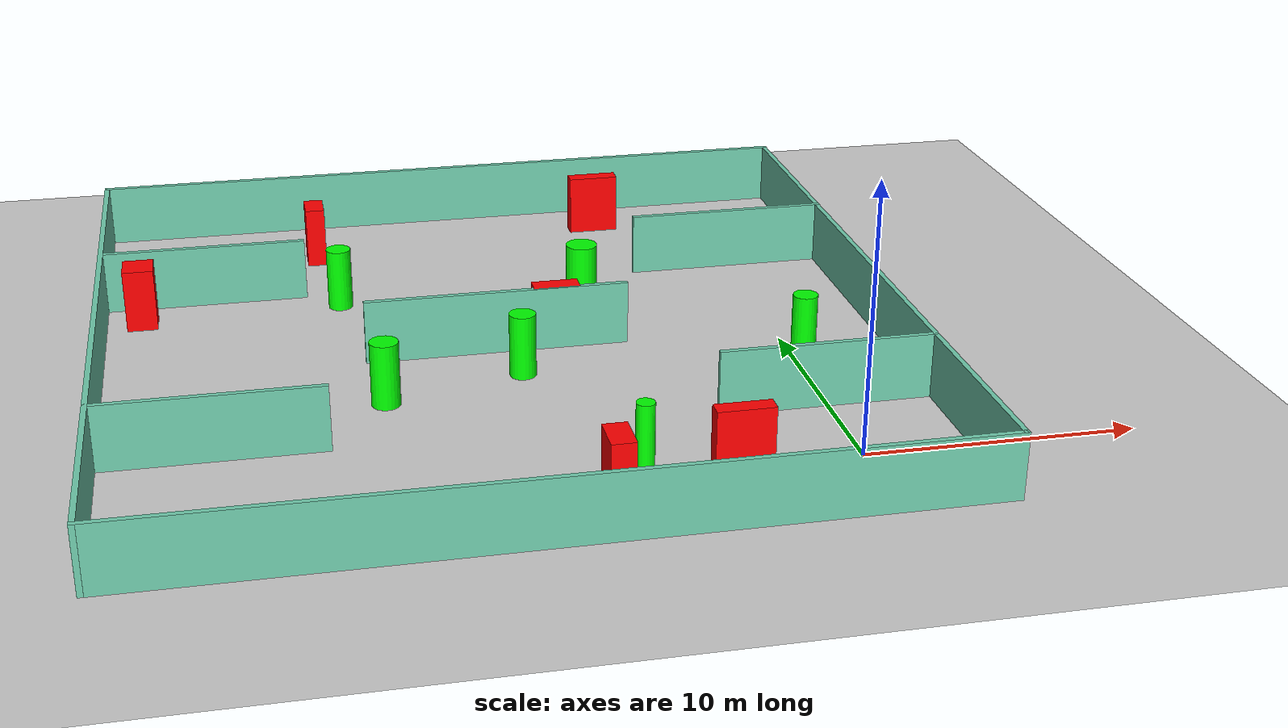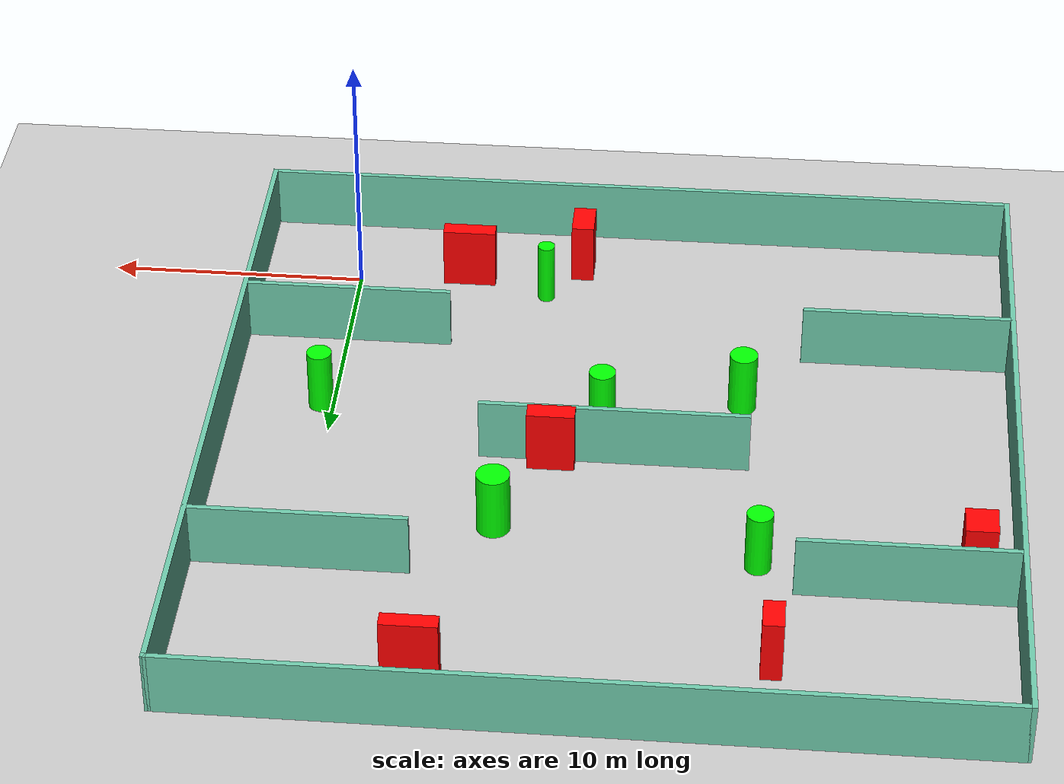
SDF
<sdf version="1.7">
 <world name="default">
  <light name="sun" type="directional">
   <pose>0 0 10 0 -0 0</pose>
   <diffuse>0.8 0.8 0.8 1</diffuse>
   <specular>0.2 0.2 0.2 1</specular>
   <attenuation>
    <range>1000</range>
    <constant>0.9</constant>
    <linear>0.01</linear>
    <quadratic>0.001</quadratic>
   </attenuation>
   <direction>-0.5 0.1 -0.9</direction>
   <spot><inner_angle>0</inner_angle><outer_angle>0</outer_angle><falloff>0</falloff></spot>
  </light>
  <model name="ground_plane">
   <static>1</static>
   <link name="link">
    <collision name="collision">
     <geometry><plane><normal>0 0 1</normal><size>100 100</size></plane></geometry>
     <surface>
      <contact><collide_bitmask>65535</collide_bitmask></contact>
      <friction><ode><mu>100</mu><mu2>50</mu2></ode></friction>
     </surface>
    </collision>
    <visual name="visual">
     <cast_shadows>0</cast_shadows>
     <geometry><plane><normal>0 0 1</normal><size>100 100</size></plane></geometry>
     <material>
      <script><uri>file://media/materials/scripts/gazebo.material</uri><name>Gazebo/Grey</name></script>
     </material>
    </visual>
   </link>
  </model>
  <gravity>0 0 -9.8</gravity>
  <magnetic_field>6e-06 2.3e-05 -4.2e-05</magnetic_field>
  <atmosphere type="adiabatic"/>
  <physics type="ode">
   <max_step_size>0.001</max_step_size>
   <real_time_factor>1</real_time_factor>
   <real_time_update_rate>1000</real_time_update_rate>
  </physics>
  <scene><ambient>0.4 0.4 0.4 1</ambient><background>0.7 0.7 0.7 1</background><shadows>1</shadows></scene>
  <spherical_coordinates>
   <surface_model>EARTH_WGS84</surface_model>
   <latitude_deg>0</latitude_deg>
   <longitude_deg>0</longitude_deg>
   <elevation>0</elevation>
   <heading_deg>0</heading_deg>
  </spherical_coordinates>
  <model name="my_base_walls">
   <link name="Wall_10">
    <collision name="Wall_10_Collision">
     <geometry><box><size>8.2 0.2 2.5</size></box></geometry>
     <pose>0 0 1.25 0 -0 0</pose>
    </collision>
    <visual name="Wall_10_Visual">
     <pose>0 0 1.25 0 -0 0</pose>
     <geometry><box><size>8.2 0.2 2.5</size></box></geometry>
     <material>
      <script><uri>file://media/materials/scripts/gazebo.material</uri><name>Gazebo/Grey</name></script>
      <ambient>0.435294 0.796078 0.67451 1</ambient>
     </material>
     <meta><layer>0</layer></meta>
    </visual>
    <pose>-11 -7 0 0 -0 0</pose>
   </link>
   <link name="Wall_12">
    <collision name="Wall_12_Collision">
     <geometry><box><size>8.2 0.2 2.5</size></box></geometry>
     <pose>0 0 1.25 0 -0 0</pose>
    </collision>
    <visual name="Wall_12_Visual">
     <pose>0 0 1.25 0 -0 0</pose>
     <geometry><box><size>8.2 0.2 2.5</size></box></geometry>
     <material>
      <script><uri>file://media/materials/scripts/gazebo.material</uri><name>Gazebo/Grey</name></script>
      <ambient>0.435294 0.796078 0.67451 1</ambient>
     </material>
     <meta><layer>0</layer></meta>
    </visual>
    <pose>-11 7 0 0 -0 0</pose>
   </link>
   <link name="Wall_14">
    <collision name="Wall_14_Collision">
     <geometry><box><size>8.2 0.2 2.5</size></box></geometry>
     <pose>0 0 1.25 0 -0 0</pose>
    </collision>
    <visual name="Wall_14_Visual">
     <pose>0 0 1.25 0 -0 0</pose>
     <geometry><box><size>8.2 0.2 2.5</size></box></geometry>
     <material>
      <script><uri>file://media/materials/scripts/gazebo.material</uri><name>Gazebo/Grey</name></script>
      <ambient>0.435294 0.796078 0.67451 1</ambient>
     </material>
     <meta><layer>0</layer></meta>
    </visual>
    <pose>11 7 0 0 -0 3.14159</pose>
   </link>
   <link name="Wall_16">
    <collision name="Wall_16_Collision">
     <geometry><box><size>10.2 0.2 2.5</size></box></geometry>
     <pose>0 0 1.25 0 -0 0</pose>
    </collision>
    <visual name="Wall_16_Visual">
     <pose>0 0 1.25 0 -0 0</pose>
     <geometry><box><size>10.2 0.2 2.5</size></box></geometry>
     <material>
      <script><uri>file://media/materials/scripts/gazebo.material</uri><name>Gazebo/Grey</name></script>
      <ambient>0.435294 0.796078 0.67451 1</ambient>
     </material>
     <meta><layer>0</layer></meta>
    </visual>
    <pose>0 0 0 0 -0 3.14159</pose>
   </link>
   <link name="Wall_2">
    <collision name="Wall_2_Collision">
     <geometry><box><size>30.2 0.2 2.5</size></box></geometry>
     <pose>0 0 1.25 0 -0 0</pose>
    </collision>
    <visual name="Wall_2_Visual">
     <pose>0 0 1.25 0 -0 0</pose>
     <geometry><box><size>30.2 0.2 2.5</size></box></geometry>
     <material>
      <script><uri>file://media/materials/scripts/gazebo.material</uri><name>Gazebo/Grey</name></script>
      <ambient>0.435294 0.796078 0.67451 1</ambient>
     </material>
     <meta><layer>0</layer></meta>
    </visual>
    <pose>0 -15 0 0 -0 3.14159</pose>
   </link>
   <link name="Wall_3">
    <collision name="Wall_3_Collision">
     <geometry><box><size>30.2 0.2 2.5</size></box></geometry>
     <pose>0 0 1.25 0 -0 0</pose>
    </collision>
    <visual name="Wall_3_Visual">
     <pose>0 0 1.25 0 -0 0</pose>
     <geometry><box><size>30.2 0.2 2.5</size></box></geometry>
     <material>
      <script><uri>file://media/materials/scripts/gazebo.material</uri><name>Gazebo/Grey</name></script>
      <ambient>0.435294 0.796078 0.67451 1</ambient>
     </material>
     <meta><layer>0</layer></meta>
    </visual>
    <pose>-15 0 0 0 -0 1.5708</pose>
   </link>
   <link name="Wall_4">
    <collision name="Wall_4_Collision">
     <geometry><box><size>30.2 0.2 2.5</size></box></geometry>
     <pose>0 0 1.25 0 -0 0</pose>
    </collision>
    <visual name="Wall_4_Visual">
     <pose>0 0 1.25 0 -0 0</pose>
     <geometry><box><size>30.2 0.2 2.5</size></box></geometry>
     <material>
      <script><uri>file://media/materials/scripts/gazebo.material</uri><name>Gazebo/Grey</name></script>
      <ambient>0.435294 0.796078 0.67451 1</ambient>
     </material>
     <meta><layer>0</layer></meta>
    </visual>
    <pose>0 15 0 0 -0 0</pose>
   </link>
   <link name="Wall_6">
    <collision name="Wall_6_Collision">
     <geometry><box><size>30.2 0.2 2.5</size></box></geometry>
     <pose>0 0 1.25 0 -0 0</pose>
    </collision>
    <visual name="Wall_6_Visual">
     <pose>0 0 1.25 0 -0 0</pose>
     <geometry><box><size>30.2 0.2 2.5</size></box></geometry>
     <material>
      <script><uri>file://media/materials/scripts/gazebo.material</uri><name>Gazebo/Grey</name></script>
      <ambient>0.435294 0.796078 0.67451 1</ambient>
     </material>
     <meta><layer>0</layer></meta>
    </visual>
    <pose>15 0 0 0 -0 1.5708</pose>
   </link>
   <link name="Wall_8">
    <collision name="Wall_8_Collision">
     <geometry><box><size>8.2 0.2 2.5</size></box></geometry>
     <pose>0 0 1.25 0 -0 0</pose>
    </collision>
    <visual name="Wall_8_Visual">
     <pose>0 0 1.25 0 -0 0</pose>
     <geometry><box><size>8.2 0.2 2.5</size></box></geometry>
     <material>
      <script><uri>file://media/materials/scripts/gazebo.material</uri><name>Gazebo/Grey</name></script>
      <ambient>0.435294 0.796078 0.67451 1</ambient>
     </material>
     <meta><layer>0</layer></meta>
    </visual>
    <pose>11 -7 0 0 -0 3.14159</pose>
   </link>
   <static>1</static>
   <pose>-11 11 0 0 -0 0</pose>
  </model>
  <model name="cylinder1">
   <static>1</static>
   <link name="link">
    <inertial>
     <mass>1</mass>
     <inertia><ixx>0.5</ixx><ixy>0</ixy><ixz>0</ixz><iyy>0.5</iyy><iyz>0</iyz><izz>1</izz></inertia>
    </inertial>
    <collision name="collision">
     <geometry><cylinder><radius>0.5076579068961748</radius><length>2.5</length></cylinder></geometry>
    </collision>
    <visual name="visual">
     <geometry><cylinder><radius>0.5076579068961748</radius><length>2.5</length></cylinder></geometry>
     <material>
      <ambient>0 1 0 1</ambient>
      <diffuse>0 1 0 1</diffuse>
      <specular>0.1 0.1 0.1 1</specular>
      <emissive>0 0 0 0</emissive>
     </material>
    </visual>
   </link>
   <pose>-10.404521040081463 8.728788992707244 1.25 0 0 0</pose>
  </model>
  <model name="cylinder2">
   <static>1</static>
   <link name="link">
    <inertial>
     <mass>1</mass>
     <inertia><ixx>0.5</ixx><ixy>0</ixy><ixz>0</ixz><iyy>0.5</iyy><iyz>0</iyz><izz>1</izz></inertia>
    </inertial>
    <collision name="collision">
     <geometry><cylinder><radius>0.47893423547726904</radius><length>2.5</length></cylinder></geometry>
    </collision>
    <visual name="visual">
     <geometry><cylinder><radius>0.47893423547726904</radius><length>2.5</length></cylinder></geometry>
     <material>
      <ambient>0 1 0 1</ambient>
      <diffuse>0 1 0 1</diffuse>
      <specular>0.1 0.1 0.1 1</specular>
      <emissive>0 0 0 0</emissive>
     </material>
    </visual>
   </link>
   <pose>0.4669063109963538 8.401607090082752 1.25 0 0 0</pose>
  </model>
  <model name="cylinder3">
   <static>1</static>
   <link name="link">
    <inertial>
     <mass>1</mass>
     <inertia><ixx>0.5</ixx><ixy>0</ixy><ixz>0</ixz><iyy>0.5</iyy><iyz>0</iyz><izz>1</izz></inertia>
    </inertial>
    <collision name="collision">
     <geometry><cylinder><radius>0.5379399599937049</radius><length>2.5</length></cylinder></geometry>
    </collision>
    <visual name="visual">
     <geometry><cylinder><radius>0.5379399599937049</radius><length>2.5</length></cylinder></geometry>
     <material>
      <ambient>0 1 0 1</ambient>
      <diffuse>0 1 0 1</diffuse>
      <specular>0.1 0.1 0.1 1</specular>
      <emissive>0 0 0 0</emissive>
     </material>
    </visual>
   </link>
   <pose>-15.706776525460837 7.2030785739266445 1.25 0 0 0</pose>
  </model>
  <model name="cylinder4">
   <static>1</static>
   <link name="link">
    <inertial>
     <mass>1</mass>
     <inertia><ixx>0.5</ixx><ixy>0</ixy><ixz>0</ixz><iyy>0.5</iyy><iyz>0</iyz><izz>1</izz></inertia>
    </inertial>
    <collision name="collision">
     <geometry><cylinder><radius>0.6294511665797756</radius><length>2.5</length></cylinder></geometry>
    </collision>
    <visual name="visual">
     <geometry><cylinder><radius>0.6294511665797756</radius><length>2.5</length></cylinder></geometry>
     <material>
      <ambient>0 1 0 1</ambient>
      <diffuse>0 1 0 1</diffuse>
      <specular>0.1 0.1 0.1 1</specular>
      <emissive>0 0 0 0</emissive>
     </material>
    </visual>
   </link>
   <pose>-6.8643484094104785 15.256737143739858 1.25 0 0 0</pose>
  </model>
  <model name="cylinder5">
   <static>1</static>
   <link name="link">
    <inertial>
     <mass>1</mass>
     <inertia><ixx>0.5</ixx><ixy>0</ixy><ixz>0</ixz><iyy>0.5</iyy><iyz>0</iyz><izz>1</izz></inertia>
    </inertial>
    <collision name="collision">
     <geometry><cylinder><radius>0.33675269054771406</radius><length>2.5</length></cylinder></geometry>
    </collision>
    <visual name="visual">
     <geometry><cylinder><radius>0.33675269054771406</radius><length>2.5</length></cylinder></geometry>
     <material>
      <ambient>0 1 0 1</ambient>
      <diffuse>0 1 0 1</diffuse>
      <specular>0.1 0.1 0.1 1</specular>
      <emissive>0 0 0 0</emissive>
     </material>
    </visual>
   </link>
   <pose>-7.599997250577182 0.5399127896762828 1.25 0 0 0</pose>
  </model>
  <model name="cylinder6">
   <static>1</static>
   <link name="link">
    <inertial>
     <mass>1</mass>
     <inertia><ixx>0.5</ixx><ixy>0</ixy><ixz>0</ixz><iyy>0.5</iyy><iyz>0</iyz><izz>1</izz></inertia>
    </inertial>
    <collision name="collision">
     <geometry><cylinder><radius>0.4889798881829362</radius><length>2.5</length></cylinder></geometry>
    </collision>
    <visual name="visual">
     <geometry><cylinder><radius>0.4889798881829362</radius><length>2.5</length></cylinder></geometry>
     <material>
      <ambient>0 1 0 1</ambient>
      <diffuse>0 1 0 1</diffuse>
      <specular>0.1 0.1 0.1 1</specular>
      <emissive>0 0 0 0</emissive>
     </material>
    </visual>
   </link>
   <pose>-16.608614359442367 16.687824479805396 1.25 0 0 0</pose>
  </model>
  <model name="box1">
   <static>1</static>
   <link name="link">
    <inertial>
     <mass>1</mass>
     <inertia><ixx>0.083</ixx><ixy>0</ixy><ixz>0</ixz><iyy>0.083</iyy><iyz>0</iyz><izz>0.083</izz></inertia>
    </inertial>
    <collision name="collision">
     <geometry><box><size>2.0874400903740633 0.6346261988567907 2.5</size></box></geometry>
    </collision>
    <visual name="visual">
     <geometry><box><size>2.0874400903740633 0.6346261988567907 2.5</size></box></geometry>
     <material>
      <ambient>1 0 0 1</ambient>
      <diffuse>1 0 0 1</diffuse>
      <specular>0.1 0.1 0.1 1</specular>
      <emissive>0 0 0 0</emissive>
     </material>
    </visual>
    <sensor name="my_contact" type="contact">
     <contact><collision>box_collision</collision><topic>__default_topic__</topic></contact>
    </sensor>
   </link>
   <pose>-4.422850896759149 -0.39294880701763857 1.25 0 0 0</pose>
  </model>
  <model name="box2">
   <static>1</static>
   <link name="link">
    <inertial>
     <mass>1</mass>
     <inertia><ixx>0.083</ixx><ixy>0</ixy><ixz>0</ixz><iyy>0.083</iyy><iyz>0</iyz><izz>0.083</izz></inertia>
    </inertial>
    <collision name="collision">
     <geometry><box><size>0.782509683025865 1.3348603657862508 2.5</size></box></geometry>
    </collision>
    <visual name="visual">
     <geometry><box><size>0.782509683025865 1.3348603657862508 2.5</size></box></geometry>
     <material>
      <ambient>1 0 0 1</ambient>
      <diffuse>1 0 0 1</diffuse>
      <specular>0.1 0.1 0.1 1</specular>
      <emissive>0 0 0 0</emissive>
     </material>
    </visual>
    <sensor name="my_contact" type="contact">
     <contact><collision>box_collision</collision><topic>__default_topic__</topic></contact>
    </sensor>
   </link>
   <pose>-17.23908709483142 22.04582611277741 1.25 0 0 0</pose>
  </model>
  <model name="box3">
   <static>1</static>
   <link name="link">
    <inertial>
     <mass>1</mass>
     <inertia><ixx>0.083</ixx><ixy>0</ixy><ixz>0</ixz><iyy>0.083</iyy><iyz>0</iyz><izz>0.083</izz></inertia>
    </inertial>
    <collision name="collision">
     <geometry><box><size>2.0917081378119136 0.6260552358578628 2.5</size></box></geometry>
    </collision>
    <visual name="visual">
     <geometry><box><size>2.0917081378119136 0.6260552358578628 2.5</size></box></geometry>
     <material>
      <ambient>1 0 0 1</ambient>
      <diffuse>1 0 0 1</diffuse>
      <specular>0.1 0.1 0.1 1</specular>
      <emissive>0 0 0 0</emissive>
     </material>
    </visual>
    <sensor name="my_contact" type="contact">
     <contact><collision>box_collision</collision><topic>__default_topic__</topic></contact>
    </sensor>
   </link>
   <pose>-4.751013996343007 23.47202831315594 1.25 0 0 0</pose>
  </model>
  <model name="box4">
   <static>1</static>
   <link name="link">
    <inertial>
     <mass>1</mass>
     <inertia><ixx>0.083</ixx><ixy>0</ixy><ixz>0</ixz><iyy>0.083</iyy><iyz>0</iyz><izz>0.083</izz></inertia>
    </inertial>
    <collision name="collision">
     <geometry><box><size>1.1977950559820365 1.2958060480655431 2.5</size></box></geometry>
    </collision>
    <visual name="visual">
     <geometry><box><size>1.1977950559820365 1.2958060480655431 2.5</size></box></geometry>
     <material>
      <ambient>1 0 0 1</ambient>
      <diffuse>1 0 0 1</diffuse>
      <specular>0.1 0.1 0.1 1</specular>
      <emissive>0 0 0 0</emissive>
     </material>
    </visual>
    <sensor name="my_contact" type="contact">
     <contact><collision>box_collision</collision><topic>__default_topic__</topic></contact>
    </sensor>
   </link>
   <pose>-24.509766211946914 16.385043880702995 1.25 0 0 0</pose>
  </model>
  <model name="box5">
   <static>1</static>
   <link name="link">
    <inertial>
     <mass>1</mass>
     <inertia><ixx>0.083</ixx><ixy>0</ixy><ixz>0</ixz><iyy>0.083</iyy><iyz>0</iyz><izz>0.083</izz></inertia>
    </inertial>
    <collision name="collision">
     <geometry><box><size>0.8869319448333384 1.5110279391500927 2.5</size></box></geometry>
    </collision>
    <visual name="visual">
     <geometry><box><size>0.8869319448333384 1.5110279391500927 2.5</size></box></geometry>
     <material>
      <ambient>1 0 0 1</ambient>
      <diffuse>1 0 0 1</diffuse>
      <specular>0.1 0.1 0.1 1</specular>
      <emissive>0 0 0 0</emissive>
     </material>
    </visual>
    <sensor name="my_contact" type="contact">
     <contact><collision>box_collision</collision><topic>__default_topic__</topic></contact>
    </sensor>
   </link>
   <pose>-8.952808114884112 -1.5176710886319231 1.25 0 0 0</pose>
  </model>
  <model name="box6">
   <static>1</static>
   <link name="link">
    <inertial>
     <mass>1</mass>
     <inertia><ixx>0.083</ixx><ixy>0</ixy><ixz>0</ixz><iyy>0.083</iyy><iyz>0</iyz><izz>0.083</izz></inertia>
    </inertial>
    <collision name="collision">
     <geometry><box><size>1.806037640982512 0.7200531914277128 2.5</size></box></geometry>
    </collision>
    <visual name="visual">
     <geometry><box><size>1.806037640982512 0.7200531914277128 2.5</size></box></geometry>
     <material>
      <ambient>1 0 0 1</ambient>
      <diffuse>1 0 0 1</diffuse>
      <specular>0.1 0.1 0.1 1</specular>
      <emissive>0 0 0 0</emissive>
     </material>
    </visual>
    <sensor name="my_contact" type="contact">
     <contact><collision>box_collision</collision><topic>__default_topic__</topic></contact>
    </sensor>
   </link>
   <pose>-8.661499878386657 11.327630482973571 1.25 0 0 0</pose>
  </model>
 </world>
</sdf>
